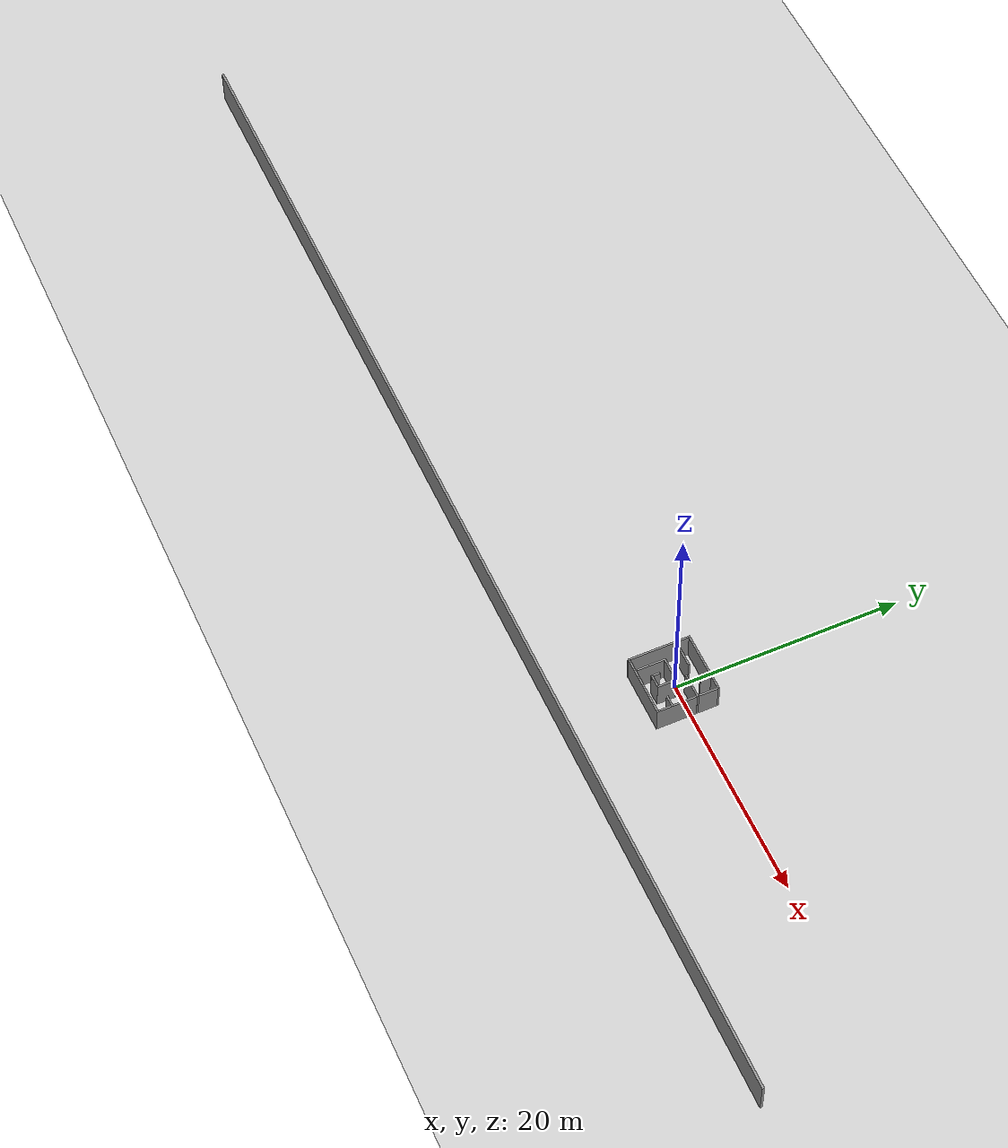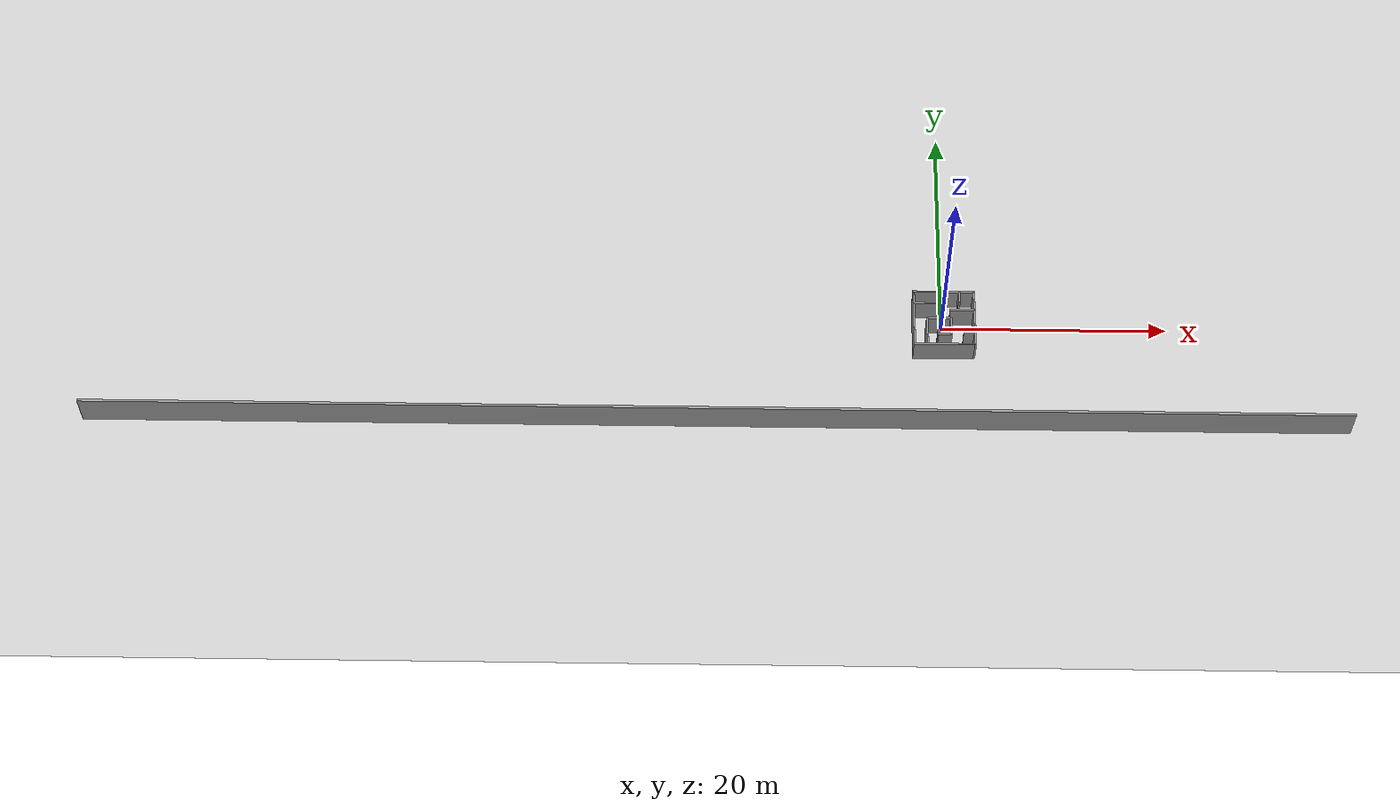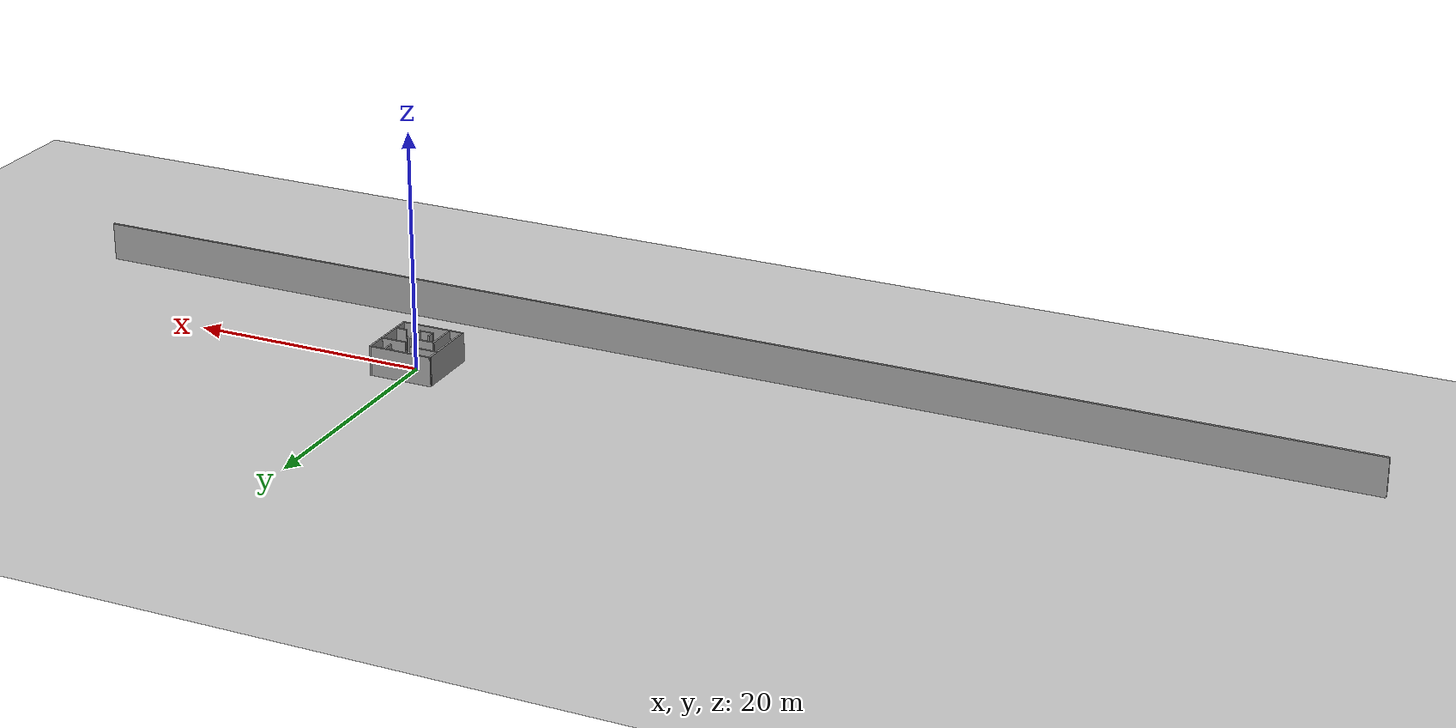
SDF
<sdf version="1.6">
 <world name="default">
  <light name="sun" type="directional">
   <pose>0 0 10 0 -0 0</pose>
   <diffuse>0.8 0.8 0.8 1</diffuse>
   <specular>0.2 0.2 0.2 1</specular>
   <attenuation>
    <range>1000</range>
    <constant>0.9</constant>
    <linear>0.01</linear>
    <quadratic>0.001</quadratic>
   </attenuation>
   <direction>0.5 0.1 -0.9</direction>
  </light>
  <model name="ground_plane">
   <static>1</static>
   <link name="link">
    <collision name="collision">
     <geometry><plane><normal>0 0 1</normal><size>100 100</size></plane></geometry>
     <surface><friction><ode><mu>100</mu><mu2>50</mu2></ode></friction></surface>
    </collision>
    <visual name="visual">
     <cast_shadows>0</cast_shadows>
     <geometry><plane><normal>0 0 1</normal><size>100 100</size></plane></geometry>
     <material>
      <script><uri>file://media/materials/scripts/gazebo.material</uri><name>Gazebo/Grey</name></script>
     </material>
    </visual>
    <velocity_decay><linear>0</linear><angular>0</angular></velocity_decay>
   </link>
  </model>
  <scene><ambient>0.4 0.4 0.4 1</ambient><background>0.7 0.7 0.7 1</background><shadows>0</shadows></scene>
  <physics name="default_physics" default="0" type="ode">
   <max_step_size>0.01</max_step_size>
   <real_time_factor>1</real_time_factor>
   <real_time_update_rate>0</real_time_update_rate>
  </physics>
  <gravity>0 0 -9.8</gravity>
  <magnetic_field>6e-06 2.3e-05 -4.2e-05</magnetic_field>
  <atmosphere type="adiabatic"/>
  <spherical_coordinates>
   <surface_model>EARTH_WGS84</surface_model>
   <latitude_deg>0</latitude_deg>
   <longitude_deg>0</longitude_deg>
   <elevation>0</elevation>
   <heading_deg>0</heading_deg>
  </spherical_coordinates>
  <model name="grey_wall">
   <static>1</static>
   <link name="link">
    <pose>0 0 1.4 0 -0 0</pose>
    <collision name="collision"><geometry><box><size>110.947 0.2 3.45678</size></box></geometry></collision>
    <visual name="visual">
     <cast_shadows>0</cast_shadows>
     <geometry><box><size>110.947 0.2 3.45678</size></box></geometry>
     <material>
      <script><uri>file://media/materials/scripts/gazebo.material</uri><name>Gazebo/Grey</name></script>
      <ambient>1 1 1 1</ambient>
     </material>
    </visual>
   </link>
   <pose>-20 -10 0 0 -0 0</pose>
  </model>
  <model name="AMAZE">
   <pose>0.126224 -0.312995 0 0 -0 0</pose>
   <link name="Wall_0">
    <collision name="Wall_0_Collision">
     <geometry><box><size>5.5 0.15 2.5</size></box></geometry>
     <pose>0 0 1.25 0 -0 0</pose>
    </collision>
    <visual name="Wall_0_Visual">
     <pose>0 0 1.25 0 -0 0</pose>
     <geometry><box><size>5.5 0.15 2.5</size></box></geometry>
     <material>
      <script><uri>file://media/materials/scripts/gazebo.material</uri><name>Gazebo/Grey</name></script>
      <ambient>1 1 1 1</ambient>
     </material>
     <meta><layer>0</layer></meta>
    </visual>
    <pose>-2.68 0 0 0 0 -1.5708</pose>
   </link>
   <link name="Wall_1">
    <collision name="Wall_1_Collision">
     <geometry><box><size>5.5 0.15 2.5</size></box></geometry>
     <pose>0 0 1.25 0 -0 0</pose>
    </collision>
    <visual name="Wall_1_Visual">
     <pose>0 0 1.25 0 -0 0</pose>
     <geometry><box><size>5.5 0.15 2.5</size></box></geometry>
     <material>
      <script><uri>file://media/materials/scripts/gazebo.material</uri><name>Gazebo/Grey</name></script>
      <ambient>1 1 1 1</ambient>
     </material>
     <meta><layer>0</layer></meta>
    </visual>
    <pose>-0.005 -2.675 0 0 -0 0</pose>
   </link>
   <link name="Wall_10">
    <collision name="Wall_10_Collision">
     <geometry><box><size>2.5 0.15 2.5</size></box></geometry>
     <pose>0 0 1.25 0 -0 0</pose>
    </collision>
    <visual name="Wall_10_Visual">
     <pose>0 0 1.25 0 -0 0</pose>
     <geometry><box><size>2.5 0.15 2.5</size></box></geometry>
     <material>
      <script><uri>file://media/materials/scripts/gazebo.material</uri><name>Gazebo/Grey</name></script>
      <ambient>1 1 1 1</ambient>
     </material>
     <meta><layer>0</layer></meta>
    </visual>
    <pose>-1.475 1.485 0 0 -0 0</pose>
   </link>
   <link name="Wall_12">
    <collision name="Wall_12_Collision">
     <geometry><box><size>2.25 0.15 2.5</size></box></geometry>
     <pose>0 0 1.25 0 -0 0</pose>
    </collision>
    <visual name="Wall_12_Visual">
     <pose>0 0 1.25 0 -0 0</pose>
     <geometry><box><size>2.25 0.15 2.5</size></box></geometry>
     <material>
      <script><uri>file://media/materials/scripts/gazebo.material</uri><name>Gazebo/Grey</name></script>
      <ambient>1 1 1 1</ambient>
     </material>
     <meta><layer>0</layer></meta>
    </visual>
    <pose>1.63 0.835 0 0 -0 3.14159</pose>
   </link>
   <link name="Wall_14">
    <collision name="Wall_14_Collision">
     <geometry><box><size>1 0.15 2.5</size></box></geometry>
     <pose>0 0 1.25 0 -0 0</pose>
    </collision>
    <visual name="Wall_14_Visual">
     <pose>0 0 1.25 0 -0 0</pose>
     <geometry><box><size>1 0.15 2.5</size></box></geometry>
     <material>
      <script><uri>file://media/materials/scripts/gazebo.material</uri><name>Gazebo/Grey</name></script>
      <ambient>1 1 1 1</ambient>
     </material>
     <meta><layer>0</layer></meta>
    </visual>
    <pose>1.37 2.18 0 0 0 -1.5708</pose>
   </link>
   <link name="Wall_16">
    <collision name="Wall_16_Collision">
     <geometry><box><size>1 0.15 2.5</size></box></geometry>
     <pose>0 0 1.25 0 -0 0</pose>
    </collision>
    <visual name="Wall_16_Visual">
     <pose>0 0 1.25 0 -0 0</pose>
     <geometry><box><size>1 0.15 2.5</size></box></geometry>
     <material>
      <script><uri>file://media/materials/scripts/gazebo.material</uri><name>Gazebo/Grey</name></script>
      <ambient>1 1 1 1</ambient>
     </material>
     <meta><layer>0</layer></meta>
    </visual>
    <pose>2.185 -1.375 0 0 -0 3.14159</pose>
   </link>
   <link name="Wall_18">
    <collision name="Wall_18_Collision">
     <geometry><box><size>0.75 0.15 2.5</size></box></geometry>
     <pose>0 0 1.25 0 -0 0</pose>
    </collision>
    <visual name="Wall_18_Visual">
     <pose>0 0 1.25 0 -0 0</pose>
     <geometry><box><size>0.75 0.15 2.5</size></box></geometry>
     <material>
      <script><uri>file://media/materials/scripts/gazebo.material</uri><name>Gazebo/Grey</name></script>
      <ambient>1 1 1 1</ambient>
     </material>
     <meta><layer>0</layer></meta>
    </visual>
    <pose>-0.52 -1.345 0 0 -0 1.5708</pose>
   </link>
   <link name="Wall_2">
    <collision name="Wall_2_Collision">
     <geometry><box><size>5.5 0.15 2.5</size></box></geometry>
     <pose>0 0 1.25 0 -0 0</pose>
    </collision>
    <visual name="Wall_2_Visual">
     <pose>0 0 1.25 0 -0 0</pose>
     <geometry><box><size>5.5 0.15 2.5</size></box></geometry>
     <material>
      <script><uri>file://media/materials/scripts/gazebo.material</uri><name>Gazebo/Grey</name></script>
      <ambient>1 1 1 1</ambient>
     </material>
     <meta><layer>0</layer></meta>
    </visual>
    <pose>2.67 0 0 0 -0 1.5708</pose>
   </link>
   <link name="Wall_3">
    <collision name="Wall_3_Collision">
     <geometry><box><size>5.5 0.15 2.5</size></box></geometry>
     <pose>0 0 1.25 0 -0 0</pose>
    </collision>
    <visual name="Wall_3_Visual">
     <pose>0 0 1.25 0 -0 0</pose>
     <geometry><box><size>5.5 0.15 2.5</size></box></geometry>
     <material>
      <script><uri>file://media/materials/scripts/gazebo.material</uri><name>Gazebo/Grey</name></script>
      <ambient>1 1 1 1</ambient>
     </material>
     <meta><layer>0</layer></meta>
    </visual>
    <pose>-0.005 2.675 0 0 -0 3.14159</pose>
   </link>
   <link name="Wall_5">
    <collision name="Wall_5_Collision">
     <geometry><box><size>2.75 0.15 2.5</size></box></geometry>
     <pose>0 0 1.25 0 -0 0</pose>
    </collision>
    <visual name="Wall_5_Visual">
     <pose>0 0 1.25 0 -0 0</pose>
     <geometry><box><size>2.75 0.15 2.5</size></box></geometry>
     <material>
      <script><uri>file://media/materials/scripts/gazebo.material</uri><name>Gazebo/Grey</name></script>
      <ambient>1 1 1 1</ambient>
     </material>
     <meta><layer>0</layer></meta>
    </visual>
    <pose>-1.52 -1.345 0 0 -0 1.5708</pose>
   </link>
   <link name="Wall_6">
    <collision name="Wall_6_Collision">
     <geometry><box><size>2.25 0.15 2.5</size></box></geometry>
     <pose>0 0 1.25 0 -0 0</pose>
    </collision>
    <visual name="Wall_6_Visual">
     <pose>0 0 1.25 0 -0 0</pose>
     <geometry><box><size>2.25 0.15 2.5</size></box></geometry>
     <material>
      <script><uri>file://media/materials/scripts/gazebo.material</uri><name>Gazebo/Grey</name></script>
      <ambient>1 1 1 1</ambient>
     </material>
     <meta><layer>0</layer></meta>
    </visual>
    <pose>-0.47 -0.045 0 0 -0 0</pose>
   </link>
   <link name="Wall_7">
    <collision name="Wall_7_Collision">
     <geometry><box><size>1.75 0.15 2.5</size></box></geometry>
     <pose>0 0 1.25 0 -0 0</pose>
    </collision>
    <visual name="Wall_7_Visual">
     <pose>0 0 1.25 0 -0 0</pose>
     <geometry><box><size>1.75 0.15 2.5</size></box></geometry>
     <material>
      <script><uri>file://media/materials/scripts/gazebo.material</uri><name>Gazebo/Grey</name></script>
      <ambient>1 1 1 1</ambient>
     </material>
     <meta><layer>0</layer></meta>
    </visual>
    <pose>0.58 -0.845 0 0 0 -1.5708</pose>
   </link>
   <link name="Wall_8">
    <collision name="Wall_8_Collision">
     <geometry><box><size>1.25 0.15 2.5</size></box></geometry>
     <pose>0 0 1.25 0 -0 0</pose>
    </collision>
    <visual name="Wall_8_Visual">
     <pose>0 0 1.25 0 -0 0</pose>
     <geometry><box><size>1.25 0.15 2.5</size></box></geometry>
     <material>
      <script><uri>file://media/materials/scripts/gazebo.material</uri><name>Gazebo/Grey</name></script>
      <ambient>1 1 1 1</ambient>
     </material>
     <meta><layer>0</layer></meta>
    </visual>
    <pose>0.03 -1.645 0 0 -0 3.14159</pose>
   </link>
   <static>1</static>
  </model>
 </world>
</sdf>
